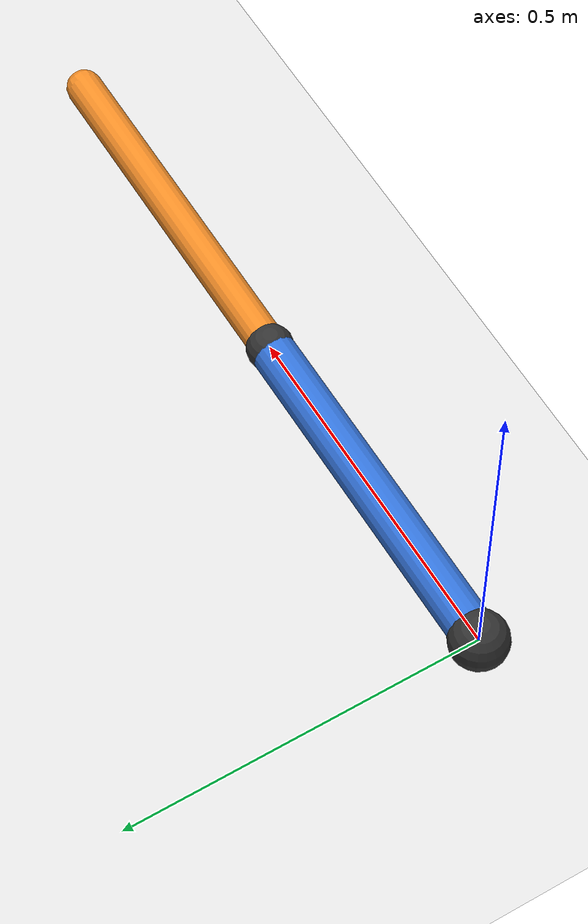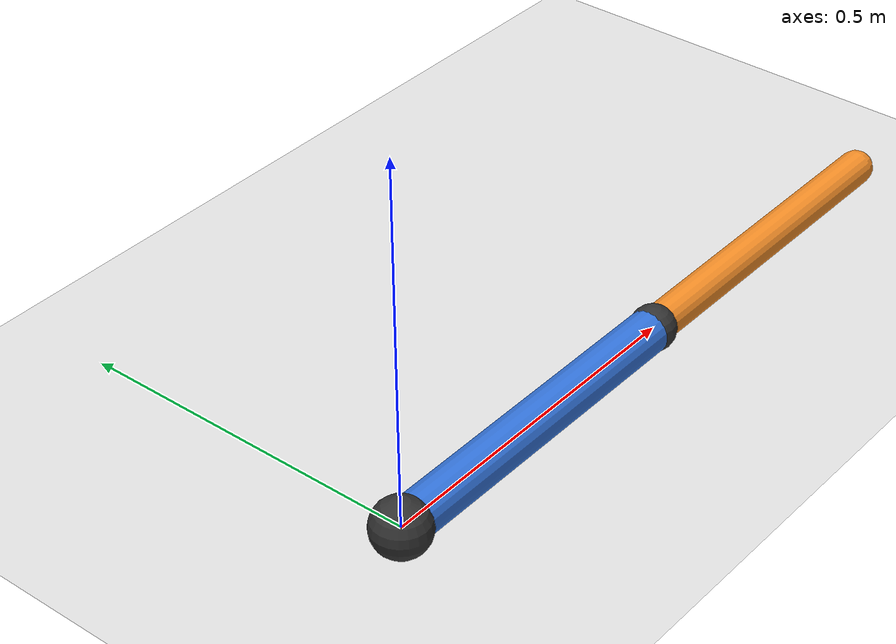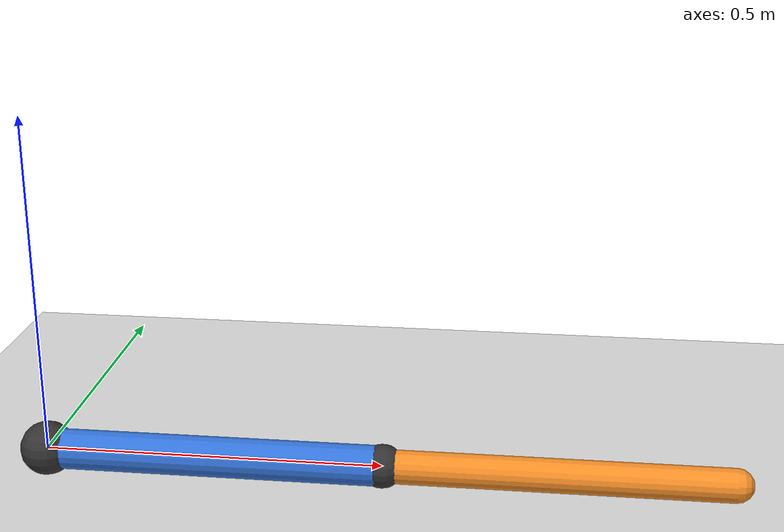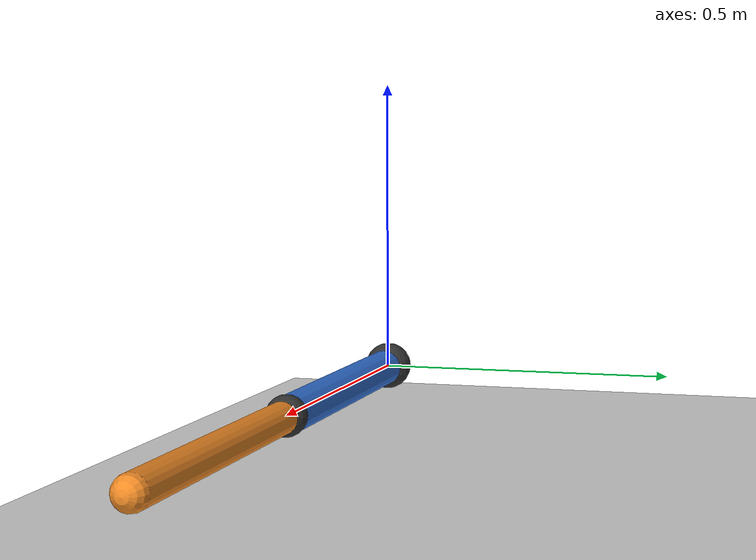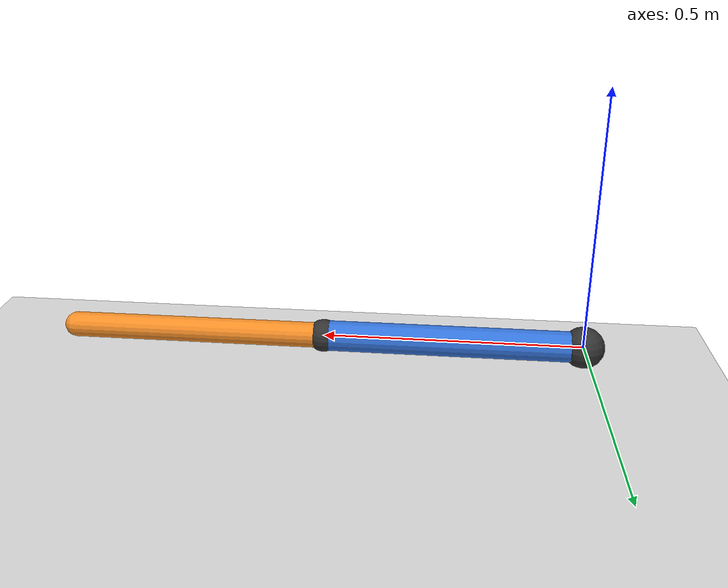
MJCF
<mujoco model="robot_arm_2dof">
  <compiler angle="radian"/>
  <option gravity="0 0 0" timestep="0.002"/>
  <visual>
  <global offwidth="1920" offheight="1080"/>
  </visual>

  <asset>
    <texture name="grid" type="2d" builtin="checker" rgb1="0.92 0.92 0.92" rgb2="0.82 0.82 0.82" width="256" height="256"/>
    <material name="floor_mat" texture="grid" texrepeat="4 4" reflectance="0.05"/>
    <material name="link1_mat" rgba="0.20 0.45 0.85 1"/>
    <material name="link2_mat" rgba="0.95 0.55 0.15 1"/>
    <material name="joint_mat" rgba="0.20 0.20 0.20 1"/>
  </asset>

  <worldbody>
    <light name="key_light" pos="1.2 -1.2 1.6" dir="-1 1 -1" diffuse="0.8 0.8 0.8" specular="0.3 0.3 0.3"/>
    <light name="fill_light" pos="-1.0 1.0 1.2" dir="1 -1 -0.7" diffuse="0.6 0.6 0.6" specular="0.1 0.1 0.1"/>
    <camera name="cam_overview" pos="1.1 -1.6 0.9" xyaxes="0.82 0.57 0  -0.28 0.40 0.87"/>
    <camera name="cam_top" pos="0 -1.2 1.8" xyaxes="1 0 0 0 0.832 0.555"/>

    <geom name="floor" type="plane" size="2 2 0.05" pos="0 0 -0.08" material="floor_mat"/>

    <body name="link1_body" pos="0 0 0">
      <joint name="joint1" type="hinge" axis="0 0 1" pos="0 0 0" damping="0.1"/>
      <geom name="joint1_vis" type="sphere" size="0.04" pos="0 0 0" material="joint_mat"/>
      <geom name="link1_geom" type="capsule" fromto="0 0 0 0.5 0 0" size="0.03" mass="1.0" material="link1_mat"/>

      <body name="link2_body" pos="0.5 0 0">
        <joint name="joint2" type="hinge" axis="0 0 1" pos="0 0 0" damping="0.1"/>
        <geom name="joint2_vis" type="sphere" size="0.032" pos="0 0 0" material="joint_mat"/>
        <geom name="link2_geom" type="capsule" fromto="0 0 0 0.5 0 0" size="0.025" mass="0.7" material="link2_mat"/>
      </body>
    </body>
  </worldbody>

  <actuator>
    <motor name="torque1" joint="joint1" gear="1"/>
    <motor name="torque2" joint="joint2" gear="1"/>
  </actuator>
</mujoco>
